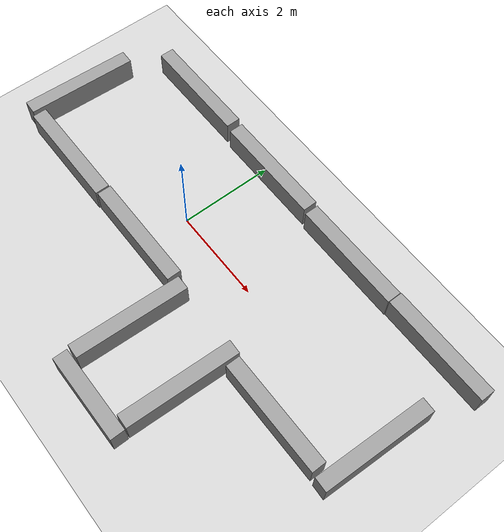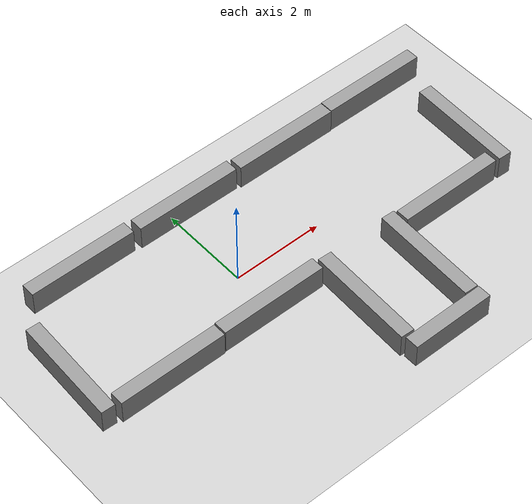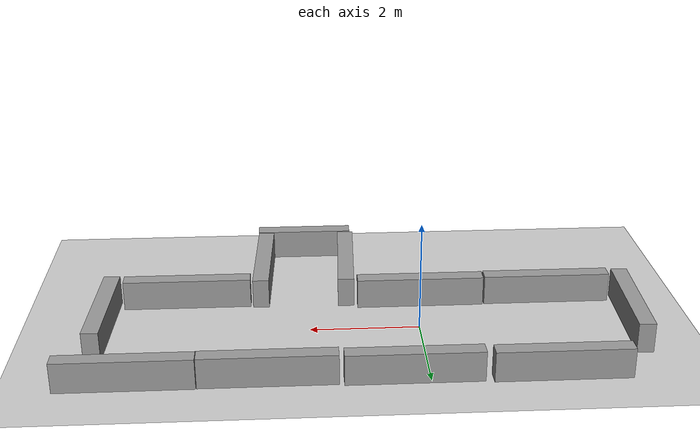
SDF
<sdf version="1.6">
 <world name="default">
  <light name="sun" type="directional">
   <pose>0 0 10 0 -0 0</pose>
   <diffuse>0.8 0.8 0.8 1</diffuse>
   <specular>0.2 0.2 0.2 1</specular>
   <attenuation>
    <range>1000</range>
    <constant>0.9</constant>
    <linear>0.01</linear>
    <quadratic>0.001</quadratic>
   </attenuation>
   <direction>-0.5 0.1 -0.9</direction>
  </light>
  <model name="ground_plane">
   <static>1</static>
   <link name="link">
    <collision name="collision">
     <geometry><plane><normal>0 0 1</normal><size>100 100</size></plane></geometry>
     <surface>
      <contact><collide_bitmask>65535</collide_bitmask></contact>
      <friction><ode><mu>20</mu><mu2>10</mu2></ode></friction>
     </surface>
    </collision>
    <visual name="visual">
     <cast_shadows>0</cast_shadows>
     <geometry><plane><normal>0 0 1</normal><size>100 100</size></plane></geometry>
     <material>
      <script><uri>file://media/materials/scripts/gazebo.material</uri><name>Gazebo/Grey</name></script>
     </material>
    </visual>
   </link>
  </model>
  <gravity>0 0 -9.8</gravity>
  <magnetic_field>6e-06 2.3e-05 -4.2e-05</magnetic_field>
  <atmosphere type="adiabatic"/>
  <physics name="default_physics" default="0" type="ode">
   <max_step_size>0.001</max_step_size>
   <real_time_factor>1</real_time_factor>
   <real_time_update_rate>1000</real_time_update_rate>
  </physics>
  <scene><ambient>0.4 0.4 0.4 1</ambient><background>0.7 0.7 0.7 1</background><shadows>1</shadows></scene>
  <spherical_coordinates>
   <surface_model>EARTH_WGS84</surface_model>
   <latitude_deg>0</latitude_deg>
   <longitude_deg>0</longitude_deg>
   <elevation>0</elevation>
   <heading_deg>0</heading_deg>
  </spherical_coordinates>
  <model name="unit_box">
   <pose>0.284557 1.93155 0.274876 0 -7.3e-05 5.6e-05</pose>
   <link name="link">
    <inertial>
     <mass>1</mass>
     <inertia>
      <ixx>0.166667</ixx>
      <ixy>0</ixy>
      <ixz>0</ixz>
      <iyy>0.166667</iyy>
      <iyz>0</iyz>
      <izz>0.166667</izz>
     </inertia>
    </inertial>
    <collision name="collision"><geometry><box><size>2.37467 0.303726 0.549925</size></box></geometry></collision>
    <visual name="visual">
     <geometry><box><size>2.37467 0.303726 0.549925</size></box></geometry>
     <material>
      <script><name>Gazebo/Grey</name><uri>file://media/materials/scripts/gazebo.material</uri></script>
     </material>
    </visual>
   </link>
  </model>
  <model name="unit_box_clone">
   <pose>2.74208 1.89353 0.274876 0 7.3e-05 5.6e-05</pose>
   <link name="link">
    <inertial>
     <mass>1</mass>
     <inertia>
      <ixx>0.166667</ixx>
      <ixy>0</ixy>
      <ixz>0</ixz>
      <iyy>0.166667</iyy>
      <iyz>0</iyz>
      <izz>0.166667</izz>
     </inertia>
    </inertial>
    <collision name="collision"><geometry><box><size>2.37467 0.303726 0.549925</size></box></geometry></collision>
    <visual name="visual">
     <geometry><box><size>2.37467 0.303726 0.549925</size></box></geometry>
     <material>
      <script><name>Gazebo/Grey</name><uri>file://media/materials/scripts/gazebo.material</uri></script>
     </material>
    </visual>
   </link>
  </model>
  <model name="unit_box_clone_0">
   <pose>-0.105583 -1.04525 0.274871 0 7.3e-05 5.6e-05</pose>
   <link name="link">
    <inertial>
     <mass>1</mass>
     <inertia>
      <ixx>0.166667</ixx>
      <ixy>0</ixy>
      <ixz>0</ixz>
      <iyy>0.166667</iyy>
      <iyz>0</iyz>
      <izz>0.166667</izz>
     </inertia>
    </inertial>
    <collision name="collision"><geometry><box><size>2.37467 0.303726 0.549925</size></box></geometry></collision>
    <visual name="visual">
     <geometry><box><size>2.37467 0.303726 0.549925</size></box></geometry>
     <material>
      <script><name>Gazebo/Grey</name><uri>file://media/materials/scripts/gazebo.material</uri></script>
     </material>
    </visual>
   </link>
  </model>
  <model name="unit_box_clone_0_clone">
   <pose>1.25657 -2.18355 0.274944 7.3e-05 3e-06 1.53321</pose>
   <link name="link">
    <inertial>
     <mass>1</mass>
     <inertia>
      <ixx>0.166667</ixx>
      <ixy>0</ixy>
      <ixz>0</ixz>
      <iyy>0.166667</iyy>
      <iyz>0</iyz>
      <izz>0.166667</izz>
     </inertia>
    </inertial>
    <collision name="collision"><geometry><box><size>2.37467 0.303726 0.549925</size></box></geometry></collision>
    <visual name="visual">
     <geometry><box><size>2.37467 0.303726 0.549925</size></box></geometry>
     <material>
      <script><name>Gazebo/Grey</name><uri>file://media/materials/scripts/gazebo.material</uri></script>
     </material>
    </visual>
   </link>
  </model>
  <model name="unit_box_clone_0_clone_clone">
   <pose>2.85932 -2.20259 0.274949 7.3e-05 3e-06 1.53321</pose>
   <link name="link">
    <inertial>
     <mass>1</mass>
     <inertia>
      <ixx>0.166667</ixx>
      <ixy>0</ixy>
      <ixz>0</ixz>
      <iyy>0.166667</iyy>
      <iyz>0</iyz>
      <izz>0.166667</izz>
     </inertia>
    </inertial>
    <collision name="collision"><geometry><box><size>2.37467 0.303726 0.549925</size></box></geometry></collision>
    <visual name="visual">
     <geometry><box><size>2.37467 0.303726 0.549925</size></box></geometry>
     <material>
      <script><name>Gazebo/Grey</name><uri>file://media/materials/scripts/gazebo.material</uri></script>
     </material>
    </visual>
   </link>
  </model>
  <model name="unit_box_clone_0_clone_0">
   <pose>-2.51082 -1.06527 0.274866 0 7.3e-05 5.6e-05</pose>
   <link name="link">
    <inertial>
     <mass>1</mass>
     <inertia>
      <ixx>0.166667</ixx>
      <ixy>0</ixy>
      <ixz>0</ixz>
      <iyy>0.166667</iyy>
      <iyz>0</iyz>
      <izz>0.166667</izz>
     </inertia>
    </inertial>
    <collision name="collision"><geometry><box><size>2.37467 0.303726 0.549925</size></box></geometry></collision>
    <visual name="visual">
     <geometry><box><size>2.37467 0.303726 0.549925</size></box></geometry>
     <material>
      <script><name>Gazebo/Grey</name><uri>file://media/materials/scripts/gazebo.material</uri></script>
     </material>
    </visual>
   </link>
  </model>
  <model name="unit_box_clone_1">
   <pose>-2.23129 1.96944 0.274876 0 -7.3e-05 5.6e-05</pose>
   <link name="link">
    <inertial>
     <mass>1</mass>
     <inertia>
      <ixx>0.166667</ixx>
      <ixy>0</ixy>
      <ixz>0</ixz>
      <iyy>0.166667</iyy>
      <iyz>0</iyz>
      <izz>0.166667</izz>
     </inertia>
    </inertial>
    <collision name="collision"><geometry><box><size>2.37467 0.303726 0.549925</size></box></geometry></collision>
    <visual name="visual">
     <geometry><box><size>2.37467 0.303726 0.549925</size></box></geometry>
     <material>
      <script><name>Gazebo/Grey</name><uri>file://media/materials/scripts/gazebo.material</uri></script>
     </material>
    </visual>
   </link>
  </model>
  <model name="unit_box_clone_clone">
   <pose>4.28738 -1.21641 0.274876 0 7.3e-05 5.6e-05</pose>
   <link name="link">
    <inertial>
     <mass>1</mass>
     <inertia>
      <ixx>0.166667</ixx>
      <ixy>0</ixy>
      <ixz>0</ixz>
      <iyy>0.166667</iyy>
      <iyz>0</iyz>
      <izz>0.166667</izz>
     </inertia>
    </inertial>
    <collision name="collision"><geometry><box><size>2.37467 0.303726 0.549925</size></box></geometry></collision>
    <visual name="visual">
     <geometry><box><size>2.37467 0.303726 0.549925</size></box></geometry>
     <material>
      <script><name>Gazebo/Grey</name><uri>file://media/materials/scripts/gazebo.material</uri></script>
     </material>
    </visual>
   </link>
  </model>
  <model name="unit_box_clone_clone_0">
   <pose>5.12692 1.90669 0.274876 0 7.3e-05 5.6e-05</pose>
   <link name="link">
    <inertial>
     <mass>1</mass>
     <inertia>
      <ixx>0.166667</ixx>
      <ixy>0</ixy>
      <ixz>0</ixz>
      <iyy>0.166667</iyy>
      <iyz>0</iyz>
      <izz>0.166667</izz>
     </inertia>
    </inertial>
    <collision name="collision"><geometry><box><size>2.37467 0.303726 0.549925</size></box></geometry></collision>
    <visual name="visual">
     <geometry><box><size>2.37467 0.303726 0.549925</size></box></geometry>
     <material>
      <script><name>Gazebo/Grey</name><uri>file://media/materials/scripts/gazebo.material</uri></script>
     </material>
    </visual>
   </link>
  </model>
  <model name="unit_box_clone_clone_1">
   <pose>2.04476 -3.5682 0.27486 0 7.3e-05 5.6e-05</pose>
   <link name="link">
    <inertial>
     <mass>1</mass>
     <inertia>
      <ixx>0.166667</ixx>
      <ixy>0</ixy>
      <ixz>0</ixz>
      <iyy>0.166667</iyy>
      <iyz>0</iyz>
      <izz>0.166667</izz>
     </inertia>
    </inertial>
    <collision name="collision"><geometry><box><size>1.85395 0.303726 0.549925</size></box></geometry></collision>
    <visual name="visual">
     <geometry><box><size>1.85395 0.303726 0.549925</size></box></geometry>
     <material>
      <script><name>Gazebo/Grey</name><uri>file://media/materials/scripts/gazebo.material</uri></script>
     </material>
    </visual>
   </link>
  </model>
  <model name="unit_box_clone_0_clone_clone_clone">
   <pose>5.7515 -0.202382 0.274949 7.3e-05 3e-06 1.53321</pose>
   <link name="link">
    <inertial>
     <mass>1</mass>
     <inertia>
      <ixx>0.166667</ixx>
      <ixy>0</ixy>
      <ixz>0</ixz>
      <iyy>0.166667</iyy>
      <iyz>0</iyz>
      <izz>0.166667</izz>
     </inertia>
    </inertial>
    <collision name="collision"><geometry><box><size>2.37467 0.303726 0.549925</size></box></geometry></collision>
    <visual name="visual">
     <geometry><box><size>2.37467 0.303726 0.549925</size></box></geometry>
     <material>
      <script><name>Gazebo/Grey</name><uri>file://media/materials/scripts/gazebo.material</uri></script>
     </material>
    </visual>
   </link>
  </model>
  <model name="unit_box_clone_0_clone_clone_clone_clone">
   <pose>-3.89762 0.034433 0.274949 7.3e-05 3e-06 1.53321</pose>
   <link name="link">
    <inertial>
     <mass>1</mass>
     <inertia>
      <ixx>0.166667</ixx>
      <ixy>0</ixy>
      <ixz>0</ixz>
      <iyy>0.166667</iyy>
      <iyz>0</iyz>
      <izz>0.166667</izz>
     </inertia>
    </inertial>
    <collision name="collision"><geometry><box><size>2.37467 0.303726 0.549925</size></box></geometry></collision>
    <visual name="visual">
     <geometry><box><size>2.37467 0.303726 0.549925</size></box></geometry>
     <material>
      <script><name>Gazebo/Grey</name><uri>file://media/materials/scripts/gazebo.material</uri></script>
     </material>
    </visual>
   </link>
  </model>
 </world>
</sdf>
